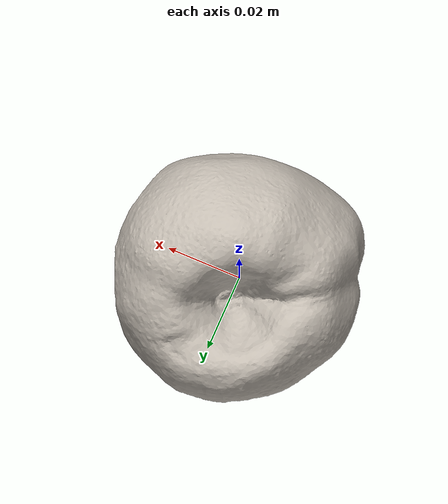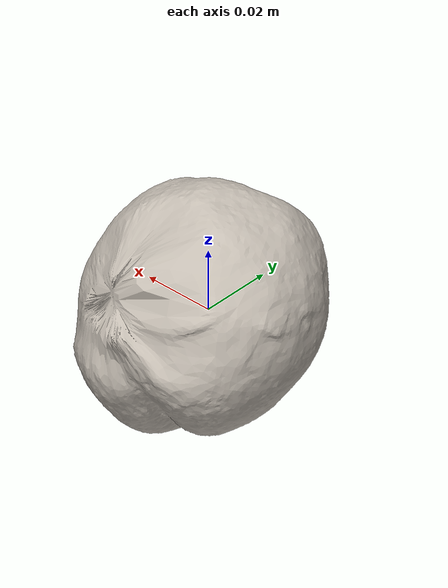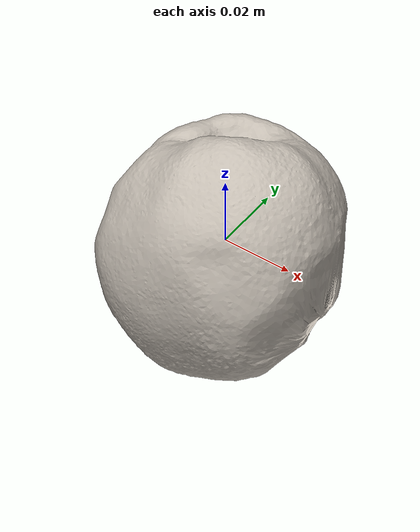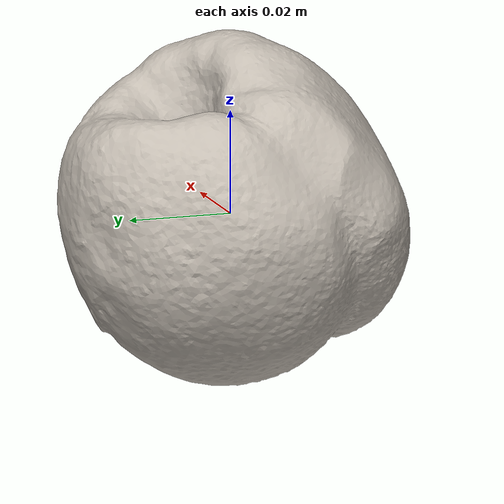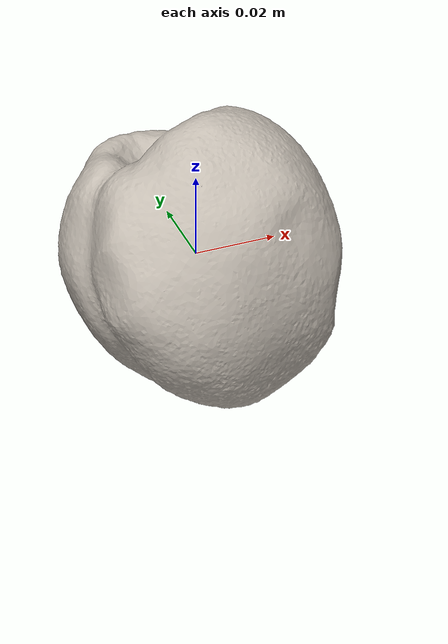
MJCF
<mujoco model="peach_0">
  <asset>
    <mesh file="visual/model_normalized_0.obj" name="peach_0_model_normalized_0_vis" scale="0.06999999999999998 0.06999999999999998 0.06999999999999998" refquat="0.7071067811865475 0.0 0.7071067811865476 0.0" />
    <mesh file="collision/model_normalized_collision_22.obj" name="peach_0_model_normalized_collision_22._coll" scale="0.06999999999999998 0.06999999999999998 0.06999999999999998" refquat="0.7071067811865475 0.0 0.7071067811865476 0.0" />
    <mesh file="collision/model_normalized_collision_23.obj" name="peach_0_model_normalized_collision_23._coll" scale="0.06999999999999998 0.06999999999999998 0.06999999999999998" refquat="0.7071067811865475 0.0 0.7071067811865476 0.0" />
    <mesh file="collision/model_normalized_collision_21.obj" name="peach_0_model_normalized_collision_21._coll" scale="0.06999999999999998 0.06999999999999998 0.06999999999999998" refquat="0.7071067811865475 0.0 0.7071067811865476 0.0" />
    <mesh file="collision/model_normalized_collision_20.obj" name="peach_0_model_normalized_collision_20._coll" scale="0.06999999999999998 0.06999999999999998 0.06999999999999998" refquat="0.7071067811865475 0.0 0.7071067811865476 0.0" />
    <mesh file="collision/model_normalized_collision_24.obj" name="peach_0_model_normalized_collision_24._coll" scale="0.06999999999999998 0.06999999999999998 0.06999999999999998" refquat="0.7071067811865475 0.0 0.7071067811865476 0.0" />
    <mesh file="collision/model_normalized_collision_30.obj" name="peach_0_model_normalized_collision_30._coll" scale="0.06999999999999998 0.06999999999999998 0.06999999999999998" refquat="0.7071067811865475 0.0 0.7071067811865476 0.0" />
    <mesh file="collision/model_normalized_collision_18.obj" name="peach_0_model_normalized_collision_18._coll" scale="0.06999999999999998 0.06999999999999998 0.06999999999999998" refquat="0.7071067811865475 0.0 0.7071067811865476 0.0" />
    <mesh file="collision/model_normalized_collision_19.obj" name="peach_0_model_normalized_collision_19._coll" scale="0.06999999999999998 0.06999999999999998 0.06999999999999998" refquat="0.7071067811865475 0.0 0.7071067811865476 0.0" />
    <mesh file="collision/model_normalized_collision_31.obj" name="peach_0_model_normalized_collision_31._coll" scale="0.06999999999999998 0.06999999999999998 0.06999999999999998" refquat="0.7071067811865475 0.0 0.7071067811865476 0.0" />
    <mesh file="collision/model_normalized_collision_25.obj" name="peach_0_model_normalized_collision_25._coll" scale="0.06999999999999998 0.06999999999999998 0.06999999999999998" refquat="0.7071067811865475 0.0 0.7071067811865476 0.0" />
    <mesh file="collision/model_normalized_collision_27.obj" name="peach_0_model_normalized_collision_27._coll" scale="0.06999999999999998 0.06999999999999998 0.06999999999999998" refquat="0.7071067811865475 0.0 0.7071067811865476 0.0" />
    <mesh file="collision/model_normalized_collision_26.obj" name="peach_0_model_normalized_collision_26._coll" scale="0.06999999999999998 0.06999999999999998 0.06999999999999998" refquat="0.7071067811865475 0.0 0.7071067811865476 0.0" />
    <mesh file="collision/model_normalized_collision_9.obj" name="peach_0_model_normalized_collision_9._coll" scale="0.06999999999999998 0.06999999999999998 0.06999999999999998" refquat="0.7071067811865475 0.0 0.7071067811865476 0.0" />
    <mesh file="collision/model_normalized_collision_8.obj" name="peach_0_model_normalized_collision_8._coll" scale="0.06999999999999998 0.06999999999999998 0.06999999999999998" refquat="0.7071067811865475 0.0 0.7071067811865476 0.0" />
    <mesh file="collision/model_normalized_collision_6.obj" name="peach_0_model_normalized_collision_6._coll" scale="0.06999999999999998 0.06999999999999998 0.06999999999999998" refquat="0.7071067811865475 0.0 0.7071067811865476 0.0" />
    <mesh file="collision/model_normalized_collision_7.obj" name="peach_0_model_normalized_collision_7._coll" scale="0.06999999999999998 0.06999999999999998 0.06999999999999998" refquat="0.7071067811865475 0.0 0.7071067811865476 0.0" />
    <mesh file="collision/model_normalized_collision_5.obj" name="peach_0_model_normalized_collision_5._coll" scale="0.06999999999999998 0.06999999999999998 0.06999999999999998" refquat="0.7071067811865475 0.0 0.7071067811865476 0.0" />
    <mesh file="collision/model_normalized_collision_4.obj" name="peach_0_model_normalized_collision_4._coll" scale="0.06999999999999998 0.06999999999999998 0.06999999999999998" refquat="0.7071067811865475 0.0 0.7071067811865476 0.0" />
    <mesh file="collision/model_normalized_collision_0.obj" name="peach_0_model_normalized_collision_0._coll" scale="0.06999999999999998 0.06999999999999998 0.06999999999999998" refquat="0.7071067811865475 0.0 0.7071067811865476 0.0" />
    <mesh file="collision/model_normalized_collision_1.obj" name="peach_0_model_normalized_collision_1._coll" scale="0.06999999999999998 0.06999999999999998 0.06999999999999998" refquat="0.7071067811865475 0.0 0.7071067811865476 0.0" />
    <mesh file="collision/model_normalized_collision_3.obj" name="peach_0_model_normalized_collision_3._coll" scale="0.06999999999999998 0.06999999999999998 0.06999999999999998" refquat="0.7071067811865475 0.0 0.7071067811865476 0.0" />
    <mesh file="collision/model_normalized_collision_2.obj" name="peach_0_model_normalized_collision_2._coll" scale="0.06999999999999998 0.06999999999999998 0.06999999999999998" refquat="0.7071067811865475 0.0 0.7071067811865476 0.0" />
    <mesh file="collision/model_normalized_collision_17.obj" name="peach_0_model_normalized_collision_17._coll" scale="0.06999999999999998 0.06999999999999998 0.06999999999999998" refquat="0.7071067811865475 0.0 0.7071067811865476 0.0" />
    <mesh file="collision/model_normalized_collision_16.obj" name="peach_0_model_normalized_collision_16._coll" scale="0.06999999999999998 0.06999999999999998 0.06999999999999998" refquat="0.7071067811865475 0.0 0.7071067811865476 0.0" />
    <mesh file="collision/model_normalized_collision_28.obj" name="peach_0_model_normalized_collision_28._coll" scale="0.06999999999999998 0.06999999999999998 0.06999999999999998" refquat="0.7071067811865475 0.0 0.7071067811865476 0.0" />
    <mesh file="collision/model_normalized_collision_14.obj" name="peach_0_model_normalized_collision_14._coll" scale="0.06999999999999998 0.06999999999999998 0.06999999999999998" refquat="0.7071067811865475 0.0 0.7071067811865476 0.0" />
    <mesh file="collision/model_normalized_collision_15.obj" name="peach_0_model_normalized_collision_15._coll" scale="0.06999999999999998 0.06999999999999998 0.06999999999999998" refquat="0.7071067811865475 0.0 0.7071067811865476 0.0" />
    <mesh file="collision/model_normalized_collision_29.obj" name="peach_0_model_normalized_collision_29._coll" scale="0.06999999999999998 0.06999999999999998 0.06999999999999998" refquat="0.7071067811865475 0.0 0.7071067811865476 0.0" />
    <mesh file="collision/model_normalized_collision_11.obj" name="peach_0_model_normalized_collision_11._coll" scale="0.06999999999999998 0.06999999999999998 0.06999999999999998" refquat="0.7071067811865475 0.0 0.7071067811865476 0.0" />
    <mesh file="collision/model_normalized_collision_10.obj" name="peach_0_model_normalized_collision_10._coll" scale="0.06999999999999998 0.06999999999999998 0.06999999999999998" refquat="0.7071067811865475 0.0 0.7071067811865476 0.0" />
    <mesh file="collision/model_normalized_collision_12.obj" name="peach_0_model_normalized_collision_12._coll" scale="0.06999999999999998 0.06999999999999998 0.06999999999999998" refquat="0.7071067811865475 0.0 0.7071067811865476 0.0" />
    <mesh file="collision/model_normalized_collision_13.obj" name="peach_0_model_normalized_collision_13._coll" scale="0.06999999999999998 0.06999999999999998 0.06999999999999998" refquat="0.7071067811865475 0.0 0.7071067811865476 0.0" />
    <texture type="2d" name="peach_0_image0" file="visual/image0.png" />
    <material name="peach_0_Material_0.002" texture="peach_0_image0" specular="0.5" shininess="0.359999993" />
  </asset>
  <worldbody>
    <body>
      <joint name="peach_0_object_joint" type="free" damping="1." /><body name="peach_0_object">
        <geom solimp="0.998 0.998 0.001" solref="0.001 1" density="300" friction="0.95 0.3 0.1" type="mesh" mesh="peach_0_model_normalized_0_vis" conaffinity="0" contype="0" group="1" material="peach_0_Material_0.002" />
        <geom solimp="0.998 0.998 0.001" solref="0.001 1" density="300" friction="0.95 0.3 0.1" type="mesh" mesh="peach_0_model_normalized_collision_22._coll" group="0" rgba="0.8 0.8 0.8 0.0" />
        <geom solimp="0.998 0.998 0.001" solref="0.001 1" density="300" friction="0.95 0.3 0.1" type="mesh" mesh="peach_0_model_normalized_collision_23._coll" group="0" rgba="0.8 0.8 0.8 0.0" />
        <geom solimp="0.998 0.998 0.001" solref="0.001 1" density="300" friction="0.95 0.3 0.1" type="mesh" mesh="peach_0_model_normalized_collision_21._coll" group="0" rgba="0.8 0.8 0.8 0.0" />
        <geom solimp="0.998 0.998 0.001" solref="0.001 1" density="300" friction="0.95 0.3 0.1" type="mesh" mesh="peach_0_model_normalized_collision_20._coll" group="0" rgba="0.8 0.8 0.8 0.0" />
        <geom solimp="0.998 0.998 0.001" solref="0.001 1" density="300" friction="0.95 0.3 0.1" type="mesh" mesh="peach_0_model_normalized_collision_24._coll" group="0" rgba="0.8 0.8 0.8 0.0" />
        <geom solimp="0.998 0.998 0.001" solref="0.001 1" density="300" friction="0.95 0.3 0.1" type="mesh" mesh="peach_0_model_normalized_collision_30._coll" group="0" rgba="0.8 0.8 0.8 0.0" />
        <geom solimp="0.998 0.998 0.001" solref="0.001 1" density="300" friction="0.95 0.3 0.1" type="mesh" mesh="peach_0_model_normalized_collision_18._coll" group="0" rgba="0.8 0.8 0.8 0.0" />
        <geom solimp="0.998 0.998 0.001" solref="0.001 1" density="300" friction="0.95 0.3 0.1" type="mesh" mesh="peach_0_model_normalized_collision_19._coll" group="0" rgba="0.8 0.8 0.8 0.0" />
        <geom solimp="0.998 0.998 0.001" solref="0.001 1" density="300" friction="0.95 0.3 0.1" type="mesh" mesh="peach_0_model_normalized_collision_31._coll" group="0" rgba="0.8 0.8 0.8 0.0" />
        <geom solimp="0.998 0.998 0.001" solref="0.001 1" density="300" friction="0.95 0.3 0.1" type="mesh" mesh="peach_0_model_normalized_collision_25._coll" group="0" rgba="0.8 0.8 0.8 0.0" />
        <geom solimp="0.998 0.998 0.001" solref="0.001 1" density="300" friction="0.95 0.3 0.1" type="mesh" mesh="peach_0_model_normalized_collision_27._coll" group="0" rgba="0.8 0.8 0.8 0.0" />
        <geom solimp="0.998 0.998 0.001" solref="0.001 1" density="300" friction="0.95 0.3 0.1" type="mesh" mesh="peach_0_model_normalized_collision_26._coll" group="0" rgba="0.8 0.8 0.8 0.0" />
        <geom solimp="0.998 0.998 0.001" solref="0.001 1" density="300" friction="0.95 0.3 0.1" type="mesh" mesh="peach_0_model_normalized_collision_9._coll" group="0" rgba="0.8 0.8 0.8 0.0" />
        <geom solimp="0.998 0.998 0.001" solref="0.001 1" density="300" friction="0.95 0.3 0.1" type="mesh" mesh="peach_0_model_normalized_collision_8._coll" group="0" rgba="0.8 0.8 0.8 0.0" />
        <geom solimp="0.998 0.998 0.001" solref="0.001 1" density="300" friction="0.95 0.3 0.1" type="mesh" mesh="peach_0_model_normalized_collision_6._coll" group="0" rgba="0.8 0.8 0.8 0.0" />
        <geom solimp="0.998 0.998 0.001" solref="0.001 1" density="300" friction="0.95 0.3 0.1" type="mesh" mesh="peach_0_model_normalized_collision_7._coll" group="0" rgba="0.8 0.8 0.8 0.0" />
        <geom solimp="0.998 0.998 0.001" solref="0.001 1" density="300" friction="0.95 0.3 0.1" type="mesh" mesh="peach_0_model_normalized_collision_5._coll" group="0" rgba="0.8 0.8 0.8 0.0" />
        <geom solimp="0.998 0.998 0.001" solref="0.001 1" density="300" friction="0.95 0.3 0.1" type="mesh" mesh="peach_0_model_normalized_collision_4._coll" group="0" rgba="0.8 0.8 0.8 0.0" />
        <geom solimp="0.998 0.998 0.001" solref="0.001 1" density="300" friction="0.95 0.3 0.1" type="mesh" mesh="peach_0_model_normalized_collision_0._coll" group="0" rgba="0.8 0.8 0.8 0.0" />
        <geom solimp="0.998 0.998 0.001" solref="0.001 1" density="300" friction="0.95 0.3 0.1" type="mesh" mesh="peach_0_model_normalized_collision_1._coll" group="0" rgba="0.8 0.8 0.8 0.0" />
        <geom solimp="0.998 0.998 0.001" solref="0.001 1" density="300" friction="0.95 0.3 0.1" type="mesh" mesh="peach_0_model_normalized_collision_3._coll" group="0" rgba="0.8 0.8 0.8 0.0" />
        <geom solimp="0.998 0.998 0.001" solref="0.001 1" density="300" friction="0.95 0.3 0.1" type="mesh" mesh="peach_0_model_normalized_collision_2._coll" group="0" rgba="0.8 0.8 0.8 0.0" />
        <geom solimp="0.998 0.998 0.001" solref="0.001 1" density="300" friction="0.95 0.3 0.1" type="mesh" mesh="peach_0_model_normalized_collision_17._coll" group="0" rgba="0.8 0.8 0.8 0.0" />
        <geom solimp="0.998 0.998 0.001" solref="0.001 1" density="300" friction="0.95 0.3 0.1" type="mesh" mesh="peach_0_model_normalized_collision_16._coll" group="0" rgba="0.8 0.8 0.8 0.0" />
        <geom solimp="0.998 0.998 0.001" solref="0.001 1" density="300" friction="0.95 0.3 0.1" type="mesh" mesh="peach_0_model_normalized_collision_28._coll" group="0" rgba="0.8 0.8 0.8 0.0" />
        <geom solimp="0.998 0.998 0.001" solref="0.001 1" density="300" friction="0.95 0.3 0.1" type="mesh" mesh="peach_0_model_normalized_collision_14._coll" group="0" rgba="0.8 0.8 0.8 0.0" />
        <geom solimp="0.998 0.998 0.001" solref="0.001 1" density="300" friction="0.95 0.3 0.1" type="mesh" mesh="peach_0_model_normalized_collision_15._coll" group="0" rgba="0.8 0.8 0.8 0.0" />
        <geom solimp="0.998 0.998 0.001" solref="0.001 1" density="300" friction="0.95 0.3 0.1" type="mesh" mesh="peach_0_model_normalized_collision_29._coll" group="0" rgba="0.8 0.8 0.8 0.0" />
        <geom solimp="0.998 0.998 0.001" solref="0.001 1" density="300" friction="0.95 0.3 0.1" type="mesh" mesh="peach_0_model_normalized_collision_11._coll" group="0" rgba="0.8 0.8 0.8 0.0" />
        <geom solimp="0.998 0.998 0.001" solref="0.001 1" density="300" friction="0.95 0.3 0.1" type="mesh" mesh="peach_0_model_normalized_collision_10._coll" group="0" rgba="0.8 0.8 0.8 0.0" />
        <geom solimp="0.998 0.998 0.001" solref="0.001 1" density="300" friction="0.95 0.3 0.1" type="mesh" mesh="peach_0_model_normalized_collision_12._coll" group="0" rgba="0.8 0.8 0.8 0.0" />
        <geom solimp="0.998 0.998 0.001" solref="0.001 1" density="300" friction="0.95 0.3 0.1" type="mesh" mesh="peach_0_model_normalized_collision_13._coll" group="0" rgba="0.8 0.8 0.8 0.0" />
      </body>

    </body>
  </worldbody>
</mujoco>
